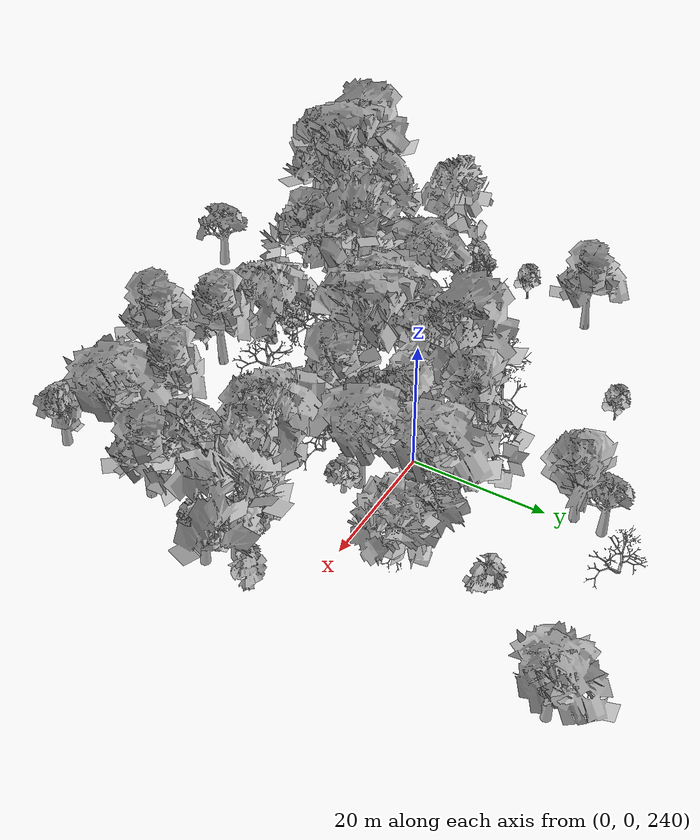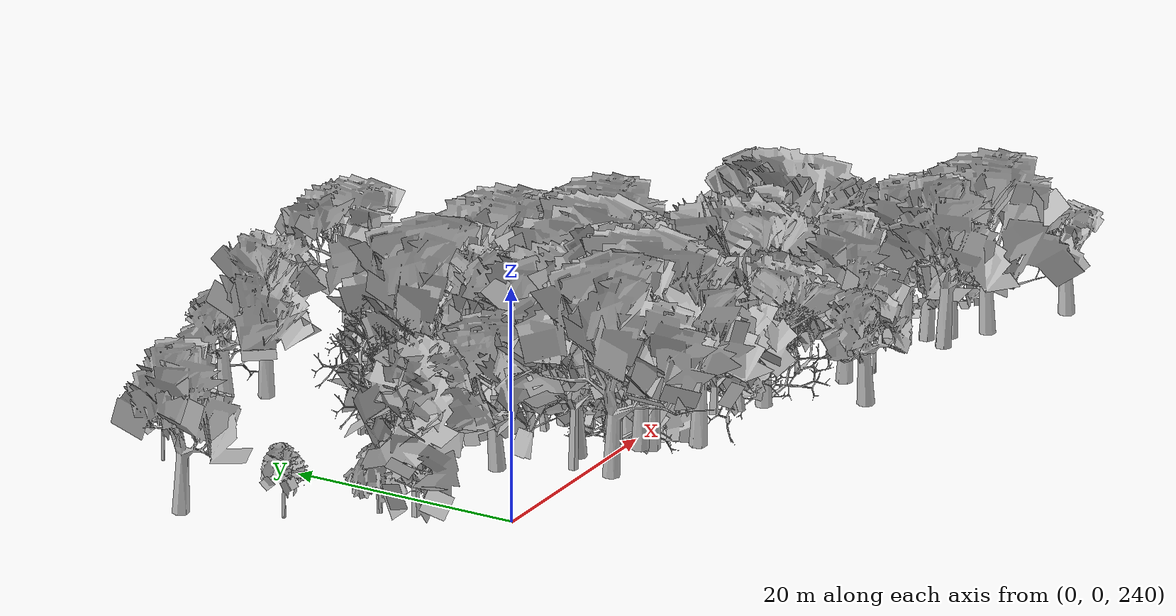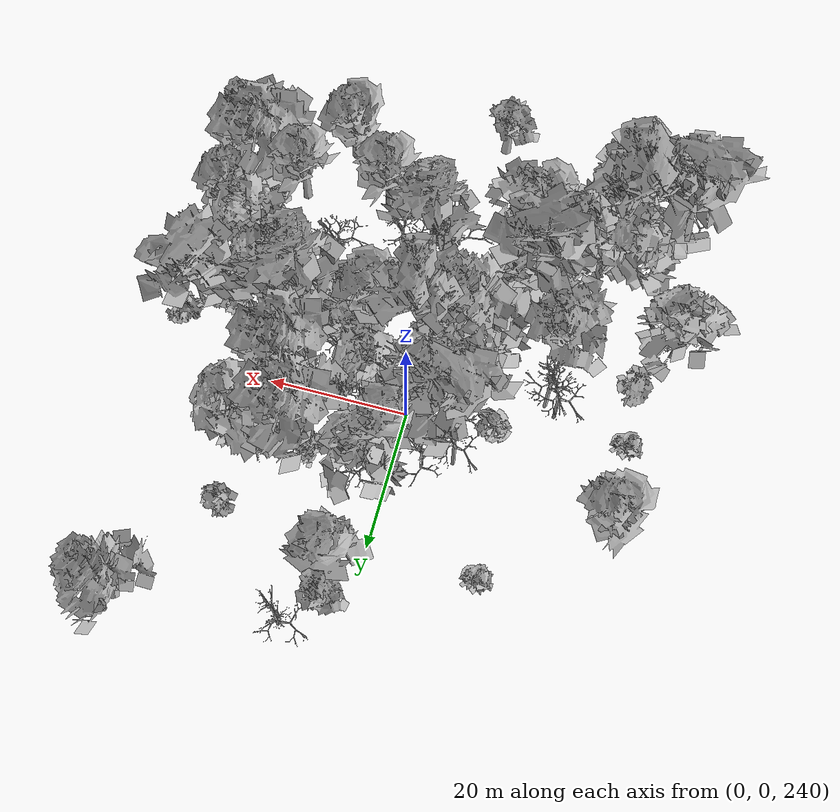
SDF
<sdf version="1.6">
 <world name="default">
  <light name="sun" type="directional">
   <pose>0 0 10 0 -0 0</pose>
   <diffuse>0.8 0.8 0.8 1</diffuse>
   <specular>0.2 0.2 0.2 1</specular>
   <attenuation>
    <range>1000</range>
    <constant>0.9</constant>
    <linear>0.01</linear>
    <quadratic>0.001</quadratic>
   </attenuation>
   <direction>-0.5 0.1 -0.9</direction>
  </light>
  <scene>
   <sky><clouds><speed>12</speed></clouds></sky>
   <ambient>0.4 0.4 0.4 1</ambient>
   <background>0.7 0.7 0.7 1</background>
   <shadows>1</shadows>
  </scene>
  <spherical_coordinates>
   <surface_model>EARTH_WGS84</surface_model>
   <latitude_deg>47.3977</latitude_deg>
   <longitude_deg>8.54559</longitude_deg>
   <elevation>0</elevation>
   <heading_deg>0</heading_deg>
  </spherical_coordinates>
  <physics name="default_physics" default="0" type="ode">
   <ode>
    <solver>
     <type>quick</type>
     <iters>100</iters>
     <sor>1.3</sor>
     <use_dynamic_moi_rescaling>0</use_dynamic_moi_rescaling>
    </solver>
    <constraints>
     <cfm>0</cfm>
     <erp>0.2</erp>
     <contact_max_correcting_vel>100</contact_max_correcting_vel>
     <contact_surface_layer>0.001</contact_surface_layer>
    </constraints>
   </ode>
   <max_step_size>0.002</max_step_size>
   <real_time_factor>1</real_time_factor>
   <real_time_update_rate>500</real_time_update_rate>
  </physics>
  <gravity>0 0 -9.8</gravity>
  <magnetic_field>6e-06 2.3e-05 -4.2e-05</magnetic_field>
  <atmosphere type="adiabatic"/>
  <model name="my_mesh0">
   <pose>-6.32831 -8.58133 252.477 0 0 -0.477507</pose>
   <static>1</static>
   <link name="body">
    <visual name="visual">
     <geometry><mesh><uri>model://trees/9.dae</uri><scale>1 1 1</scale></mesh></geometry>
    </visual>
    <collision name="collision">
     <geometry><mesh><uri>model://trees/9.dae</uri><scale>1 1 1</scale></mesh></geometry>
    </collision>
   </link>
  </model>
  <model name="my_mesh1">
   <pose>-1.57728 -21.1201 254.256 0 0 -1.08215</pose>
   <static>1</static>
   <link name="body">
    <visual name="visual">
     <geometry><mesh><uri>model://trees/19.dae</uri><scale>1 1 1</scale></mesh></geometry>
    </visual>
    <collision name="collision">
     <geometry><mesh><uri>model://trees/19.dae</uri><scale>1 1 1</scale></mesh></geometry>
    </collision>
   </link>
  </model>
  <model name="my_mesh2">
   <pose>6.13888 -3.61205 250.12 0 -0 0.696984</pose>
   <static>1</static>
   <link name="body">
    <visual name="visual">
     <geometry><mesh><uri>model://trees/1.dae</uri><scale>1 1 1</scale></mesh></geometry>
    </visual>
    <collision name="collision">
     <geometry><mesh><uri>model://trees/1.dae</uri><scale>1 1 1</scale></mesh></geometry>
    </collision>
   </link>
  </model>
  <model name="my_mesh3">
   <pose>-0.275847 2.11344 250.09 0 -0 1.06495</pose>
   <static>1</static>
   <link name="body">
    <visual name="visual">
     <geometry><mesh><uri>model://trees/2.dae</uri><scale>1 1 1</scale></mesh></geometry>
    </visual>
    <collision name="collision">
     <geometry><mesh><uri>model://trees/2.dae</uri><scale>1 1 1</scale></mesh></geometry>
    </collision>
   </link>
  </model>
  <model name="my_mesh4">
   <pose>-0.324344 -7.31548 251.705 0 0 -1.18575</pose>
   <static>1</static>
   <link name="body">
    <visual name="visual">
     <geometry><mesh><uri>model://trees/10.dae</uri><scale>1 1 1</scale></mesh></geometry>
    </visual>
    <collision name="collision">
     <geometry><mesh><uri>model://trees/10.dae</uri><scale>1 1 1</scale></mesh></geometry>
    </collision>
   </link>
  </model>
  <model name="my_mesh5">
   <pose>5.55537 -0.008784 249.718 0 -0 0.380432</pose>
   <static>1</static>
   <link name="body">
    <visual name="visual">
     <geometry><mesh><uri>model://trees/13.dae</uri><scale>1 1 1</scale></mesh></geometry>
    </visual>
    <collision name="collision">
     <geometry><mesh><uri>model://trees/13.dae</uri><scale>1 1 1</scale></mesh></geometry>
    </collision>
   </link>
  </model>
  <model name="my_mesh6">
   <pose>-7.80432 -14.2556 253.647 0 -0 0.718429</pose>
   <static>1</static>
   <link name="body">
    <visual name="visual">
     <geometry><mesh><uri>model://trees/19.dae</uri><scale>1 1 1</scale></mesh></geometry>
    </visual>
    <collision name="collision">
     <geometry><mesh><uri>model://trees/19.dae</uri><scale>1 1 1</scale></mesh></geometry>
    </collision>
   </link>
  </model>
  <model name="my_mesh7">
   <pose>0.587215 -15.3646 252.59 0 -0 1.21796</pose>
   <static>1</static>
   <link name="body">
    <visual name="visual">
     <geometry><mesh><uri>model://trees/16.dae</uri><scale>1 1 1</scale></mesh></geometry>
    </visual>
    <collision name="collision">
     <geometry><mesh><uri>model://trees/16.dae</uri><scale>1 1 1</scale></mesh></geometry>
    </collision>
   </link>
  </model>
  <model name="my_mesh8">
   <pose>-2.61893 -11.3284 252.623 0 -0 1.38453</pose>
   <static>1</static>
   <link name="body">
    <visual name="visual">
     <geometry><mesh><uri>model://trees/4.dae</uri><scale>1 1 1</scale></mesh></geometry>
    </visual>
    <collision name="collision">
     <geometry><mesh><uri>model://trees/4.dae</uri><scale>1 1 1</scale></mesh></geometry>
    </collision>
   </link>
  </model>
  <model name="my_mesh9">
   <pose>0.154091 8.51946 248.608 0 0 -1.16863</pose>
   <static>1</static>
   <link name="body">
    <visual name="visual">
     <geometry><mesh><uri>model://trees/11.dae</uri><scale>1 1 1</scale></mesh></geometry>
    </visual>
    <collision name="collision">
     <geometry><mesh><uri>model://trees/11.dae</uri><scale>1 1 1</scale></mesh></geometry>
    </collision>
   </link>
  </model>
  <model name="my_mesh10">
   <pose>-12.7811 -20.1093 256.712 0 0 -1.16319</pose>
   <static>1</static>
   <link name="body">
    <visual name="visual">
     <geometry><mesh><uri>model://trees/13.dae</uri><scale>1 1 1</scale></mesh></geometry>
    </visual>
    <collision name="collision">
     <geometry><mesh><uri>model://trees/13.dae</uri><scale>1 1 1</scale></mesh></geometry>
    </collision>
   </link>
  </model>
  <model name="my_mesh11">
   <pose>-8.42061 -7.93896 252.512 0 0 -0.668533</pose>
   <static>1</static>
   <link name="body">
    <visual name="visual">
     <geometry><mesh><uri>model://trees/12.dae</uri><scale>1 1 1</scale></mesh></geometry>
    </visual>
    <collision name="collision">
     <geometry><mesh><uri>model://trees/12.dae</uri><scale>1 1 1</scale></mesh></geometry>
    </collision>
   </link>
  </model>
  <model name="my_mesh12">
   <pose>2.51093 11.0203 247.559 0 0 -0.975487</pose>
   <static>1</static>
   <link name="body">
    <visual name="visual">
     <geometry><mesh><uri>model://trees/12.dae</uri><scale>1 1 1</scale></mesh></geometry>
    </visual>
    <collision name="collision">
     <geometry><mesh><uri>model://trees/12.dae</uri><scale>1 1 1</scale></mesh></geometry>
    </collision>
   </link>
  </model>
  <model name="my_mesh13">
   <pose>-7.06812 -9.16306 252.66 0 -0 0.472848</pose>
   <static>1</static>
   <link name="body">
    <visual name="visual">
     <geometry><mesh><uri>model://trees/4.dae</uri><scale>1 1 1</scale></mesh></geometry>
    </visual>
    <collision name="collision">
     <geometry><mesh><uri>model://trees/4.dae</uri><scale>1 1 1</scale></mesh></geometry>
    </collision>
   </link>
  </model>
  <model name="my_mesh14">
   <pose>-11.6651 -15.6457 254.564 0 0 -0.544614</pose>
   <static>1</static>
   <link name="body">
    <visual name="visual">
     <geometry><mesh><uri>model://trees/13.dae</uri><scale>1 1 1</scale></mesh></geometry>
    </visual>
    <collision name="collision">
     <geometry><mesh><uri>model://trees/13.dae</uri><scale>1 1 1</scale></mesh></geometry>
    </collision>
   </link>
  </model>
  <model name="my_mesh15">
   <pose>-5.0537 -14.5191 253.425 0 0 -1.09874</pose>
   <static>1</static>
   <link name="body">
    <visual name="visual">
     <geometry><mesh><uri>model://trees/18.dae</uri><scale>1 1 1</scale></mesh></geometry>
    </visual>
    <collision name="collision">
     <geometry><mesh><uri>model://trees/18.dae</uri><scale>1 1 1</scale></mesh></geometry>
    </collision>
   </link>
  </model>
  <model name="my_mesh16">
   <pose>-6.85318 -11.1983 252.956 0 0 -0.074618</pose>
   <static>1</static>
   <link name="body">
    <visual name="visual">
     <geometry><mesh><uri>model://trees/1.dae</uri><scale>1 1 1</scale></mesh></geometry>
    </visual>
    <collision name="collision">
     <geometry><mesh><uri>model://trees/1.dae</uri><scale>1 1 1</scale></mesh></geometry>
    </collision>
   </link>
  </model>
  <model name="my_mesh17">
   <pose>-30.86 -26.7534 260.634 0 0 -0.004821</pose>
   <static>1</static>
   <link name="body">
    <visual name="visual">
     <geometry><mesh><uri>model://trees/10.dae</uri><scale>1 1 1</scale></mesh></geometry>
    </visual>
    <collision name="collision">
     <geometry><mesh><uri>model://trees/10.dae</uri><scale>1 1 1</scale></mesh></geometry>
    </collision>
   </link>
  </model>
  <model name="my_mesh18">
   <pose>8.61712 -10.6661 250.977 0 0 -0.179722</pose>
   <static>1</static>
   <link name="body">
    <visual name="visual">
     <geometry><mesh><uri>model://trees/0.dae</uri><scale>1 1 1</scale></mesh></geometry>
    </visual>
    <collision name="collision">
     <geometry><mesh><uri>model://trees/0.dae</uri><scale>1 1 1</scale></mesh></geometry>
    </collision>
   </link>
  </model>
  <model name="my_mesh19">
   <pose>-5.9285 -3.37025 251.502 0 -0 1.52826</pose>
   <static>1</static>
   <link name="body">
    <visual name="visual">
     <geometry><mesh><uri>model://trees/14.dae</uri><scale>1 1 1</scale></mesh></geometry>
    </visual>
    <collision name="collision">
     <geometry><mesh><uri>model://trees/14.dae</uri><scale>1 1 1</scale></mesh></geometry>
    </collision>
   </link>
  </model>
  <model name="my_mesh20">
   <pose>7.38806 -1.01431 249.636 0 -0 1.32179</pose>
   <static>1</static>
   <link name="body">
    <visual name="visual">
     <geometry><mesh><uri>model://trees/17.dae</uri><scale>1 1 1</scale></mesh></geometry>
    </visual>
    <collision name="collision">
     <geometry><mesh><uri>model://trees/17.dae</uri><scale>1 1 1</scale></mesh></geometry>
    </collision>
   </link>
  </model>
  <model name="my_mesh21">
   <pose>-28.9794 -5.39808 252.518 0 -0 1.26708</pose>
   <static>1</static>
   <link name="body">
    <visual name="visual">
     <geometry><mesh><uri>model://trees/4.dae</uri><scale>1 1 1</scale></mesh></geometry>
    </visual>
    <collision name="collision">
     <geometry><mesh><uri>model://trees/4.dae</uri><scale>1 1 1</scale></mesh></geometry>
    </collision>
   </link>
  </model>
  <model name="my_mesh22">
   <pose>13.3521 -6.20302 249.824 0 -0 1.53762</pose>
   <static>1</static>
   <link name="body">
    <visual name="visual">
     <geometry><mesh><uri>model://trees/19.dae</uri><scale>1 1 1</scale></mesh></geometry>
    </visual>
    <collision name="collision">
     <geometry><mesh><uri>model://trees/19.dae</uri><scale>1 1 1</scale></mesh></geometry>
    </collision>
   </link>
  </model>
  <model name="my_mesh23">
   <pose>5.4831 -20.1514 252.856 0 -0 1.00866</pose>
   <static>1</static>
   <link name="body">
    <visual name="visual">
     <geometry><mesh><uri>model://trees/19.dae</uri><scale>1 1 1</scale></mesh></geometry>
    </visual>
    <collision name="collision">
     <geometry><mesh><uri>model://trees/19.dae</uri><scale>1 1 1</scale></mesh></geometry>
    </collision>
   </link>
  </model>
  <model name="my_mesh24">
   <pose>-29.8819 2.66146 250.763 0 -0 1.08971</pose>
   <static>1</static>
   <link name="body">
    <visual name="visual">
     <geometry><mesh><uri>model://trees/2.dae</uri><scale>1 1 1</scale></mesh></geometry>
    </visual>
    <collision name="collision">
     <geometry><mesh><uri>model://trees/2.dae</uri><scale>1 1 1</scale></mesh></geometry>
    </collision>
   </link>
  </model>
  <model name="my_mesh25">
   <pose>-6.10738 3.50783 250.075 0 0 -1.15846</pose>
   <static>1</static>
   <link name="body">
    <visual name="visual">
     <geometry><mesh><uri>model://trees/19.dae</uri><scale>1 1 1</scale></mesh></geometry>
    </visual>
    <collision name="collision">
     <geometry><mesh><uri>model://trees/19.dae</uri><scale>1 1 1</scale></mesh></geometry>
    </collision>
   </link>
  </model>
  <model name="my_mesh26">
   <pose>-20.8911 -18.1628 256.868 0 -0 1.41461</pose>
   <static>1</static>
   <link name="body">
    <visual name="visual">
     <geometry><mesh><uri>model://trees/7.dae</uri><scale>1 1 1</scale></mesh></geometry>
    </visual>
    <collision name="collision">
     <geometry><mesh><uri>model://trees/7.dae</uri><scale>1 1 1</scale></mesh></geometry>
    </collision>
   </link>
  </model>
  <model name="my_mesh27">
   <pose>-8.68455 8.69206 248.905 0 -0 0.477311</pose>
   <static>1</static>
   <link name="body">
    <visual name="visual">
     <geometry><mesh><uri>model://trees/16.dae</uri><scale>1 1 1</scale></mesh></geometry>
    </visual>
    <collision name="collision">
     <geometry><mesh><uri>model://trees/16.dae</uri><scale>1 1 1</scale></mesh></geometry>
    </collision>
   </link>
  </model>
  <model name="my_mesh28">
   <pose>-4.44021 2.16192 250.389 0 0 -1.44253</pose>
   <static>1</static>
   <link name="body">
    <visual name="visual">
     <geometry><mesh><uri>model://trees/9.dae</uri><scale>1 1 1</scale></mesh></geometry>
    </visual>
    <collision name="collision">
     <geometry><mesh><uri>model://trees/9.dae</uri><scale>1 1 1</scale></mesh></geometry>
    </collision>
   </link>
  </model>
  <model name="my_mesh29">
   <pose>11.6445 -5.81778 250.059 0 0 -1.06983</pose>
   <static>1</static>
   <link name="body">
    <visual name="visual">
     <geometry><mesh><uri>model://trees/4.dae</uri><scale>1 1 1</scale></mesh></geometry>
    </visual>
    <collision name="collision">
     <geometry><mesh><uri>model://trees/4.dae</uri><scale>1 1 1</scale></mesh></geometry>
    </collision>
   </link>
  </model>
  <model name="my_mesh30">
   <pose>-24.4938 -19.8173 257.449 0 -0 0.670876</pose>
   <static>1</static>
   <link name="body">
    <visual name="visual">
     <geometry><mesh><uri>model://trees/14.dae</uri><scale>1 1 1</scale></mesh></geometry>
    </visual>
    <collision name="collision">
     <geometry><mesh><uri>model://trees/14.dae</uri><scale>1 1 1</scale></mesh></geometry>
    </collision>
   </link>
  </model>
  <model name="my_mesh31">
   <pose>-16.1335 -19.1165 256.87 0 -0 0.366871</pose>
   <static>1</static>
   <link name="body">
    <visual name="visual">
     <geometry><mesh><uri>model://trees/19.dae</uri><scale>1 1 1</scale></mesh></geometry>
    </visual>
    <collision name="collision">
     <geometry><mesh><uri>model://trees/19.dae</uri><scale>1 1 1</scale></mesh></geometry>
    </collision>
   </link>
  </model>
  <model name="my_mesh32">
   <pose>6.79388 4.84041 248.443 0 0 -1.29503</pose>
   <static>1</static>
   <link name="body">
    <visual name="visual">
     <geometry><mesh><uri>model://trees/17.dae</uri><scale>1 1 1</scale></mesh></geometry>
    </visual>
    <collision name="collision">
     <geometry><mesh><uri>model://trees/17.dae</uri><scale>1 1 1</scale></mesh></geometry>
    </collision>
   </link>
  </model>
  <model name="my_mesh33">
   <pose>-0.614631 -21.0273 254.079 0 0 -1.03557</pose>
   <static>1</static>
   <link name="body">
    <visual name="visual">
     <geometry><mesh><uri>model://trees/0.dae</uri><scale>1 1 1</scale></mesh></geometry>
    </visual>
    <collision name="collision">
     <geometry><mesh><uri>model://trees/0.dae</uri><scale>1 1 1</scale></mesh></geometry>
    </collision>
   </link>
  </model>
  <model name="my_mesh34">
   <pose>15.4162 -30.4224 255.723 0 -0 0.546464</pose>
   <static>1</static>
   <link name="body">
    <visual name="visual">
     <geometry><mesh><uri>model://trees/11.dae</uri><scale>1 1 1</scale></mesh></geometry>
    </visual>
    <collision name="collision">
     <geometry><mesh><uri>model://trees/11.dae</uri><scale>1 1 1</scale></mesh></geometry>
    </collision>
   </link>
  </model>
  <model name="my_mesh35">
   <pose>20.9697 -23.927 252.699 0 0 -0.123696</pose>
   <static>1</static>
   <link name="body">
    <visual name="visual">
     <geometry><mesh><uri>model://trees/11.dae</uri><scale>1 1 1</scale></mesh></geometry>
    </visual>
    <collision name="collision">
     <geometry><mesh><uri>model://trees/11.dae</uri><scale>1 1 1</scale></mesh></geometry>
    </collision>
   </link>
  </model>
  <model name="my_mesh36">
   <pose>31.041 -20.7982 249.108 0 -0 0.559313</pose>
   <static>1</static>
   <link name="body">
    <visual name="visual">
     <geometry><mesh><uri>model://trees/11.dae</uri><scale>1 1 1</scale></mesh></geometry>
    </visual>
    <collision name="collision">
     <geometry><mesh><uri>model://trees/11.dae</uri><scale>1 1 1</scale></mesh></geometry>
    </collision>
   </link>
  </model>
  <model name="my_mesh37">
   <pose>29.1445 -7.6673 246.283 0 0 -0.003719</pose>
   <static>1</static>
   <link name="body">
    <visual name="visual">
     <geometry><mesh><uri>model://trees/5.dae</uri><scale>1 1 1</scale></mesh></geometry>
    </visual>
    <collision name="collision">
     <geometry><mesh><uri>model://trees/5.dae</uri><scale>1 1 1</scale></mesh></geometry>
    </collision>
   </link>
  </model>
  <model name="my_mesh38">
   <pose>-4.76391 9.99206 248.411 0 0 -0.526653</pose>
   <static>1</static>
   <link name="body">
    <visual name="visual">
     <geometry><mesh><uri>model://trees/17.dae</uri><scale>1 1 1</scale></mesh></geometry>
    </visual>
    <collision name="collision">
     <geometry><mesh><uri>model://trees/17.dae</uri><scale>1 1 1</scale></mesh></geometry>
    </collision>
   </link>
  </model>
  <model name="my_mesh39">
   <pose>15.8292 0.58574 248.7 0 -0 0.357558</pose>
   <static>1</static>
   <link name="body">
    <visual name="visual">
     <geometry><mesh><uri>model://trees/9.dae</uri><scale>1 1 1</scale></mesh></geometry>
    </visual>
    <collision name="collision">
     <geometry><mesh><uri>model://trees/9.dae</uri><scale>1 1 1</scale></mesh></geometry>
    </collision>
   </link>
  </model>
  <model name="my_mesh40">
   <pose>-3.97577 -2.45363 251.21 0 0 -0.829066</pose>
   <static>1</static>
   <link name="body">
    <visual name="visual">
     <geometry><mesh><uri>model://trees/16.dae</uri><scale>1 1 1</scale></mesh></geometry>
    </visual>
    <collision name="collision">
     <geometry><mesh><uri>model://trees/16.dae</uri><scale>1 1 1</scale></mesh></geometry>
    </collision>
   </link>
  </model>
  <model name="my_mesh41">
   <pose>12.7714 8.4382 247.289 0 -0 0.127458</pose>
   <static>1</static>
   <link name="body">
    <visual name="visual">
     <geometry><mesh><uri>model://trees/9.dae</uri><scale>1 1 1</scale></mesh></geometry>
    </visual>
    <collision name="collision">
     <geometry><mesh><uri>model://trees/9.dae</uri><scale>1 1 1</scale></mesh></geometry>
    </collision>
   </link>
  </model>
  <model name="my_mesh42">
   <pose>30.2467 33.6382 240.27 0 0 -0.142558</pose>
   <static>1</static>
   <link name="body">
    <visual name="visual">
     <geometry><mesh><uri>model://trees/8.dae</uri><scale>1 1 1</scale></mesh></geometry>
    </visual>
    <collision name="collision">
     <geometry><mesh><uri>model://trees/8.dae</uri><scale>1 1 1</scale></mesh></geometry>
    </collision>
   </link>
  </model>
  <model name="my_mesh43">
   <pose>31.7433 -7.57685 245.466 0 -0 1.47779</pose>
   <static>1</static>
   <link name="body">
    <visual name="visual">
     <geometry><mesh><uri>model://trees/10.dae</uri><scale>1 1 1</scale></mesh></geometry>
    </visual>
    <collision name="collision">
     <geometry><mesh><uri>model://trees/10.dae</uri><scale>1 1 1</scale></mesh></geometry>
    </collision>
   </link>
  </model>
  <model name="my_mesh44">
   <pose>31.7985 -13.5882 246.578 0 0 -0.512371</pose>
   <static>1</static>
   <link name="body">
    <visual name="visual">
     <geometry><mesh><uri>model://trees/0.dae</uri><scale>1 1 1</scale></mesh></geometry>
    </visual>
    <collision name="collision">
     <geometry><mesh><uri>model://trees/0.dae</uri><scale>1 1 1</scale></mesh></geometry>
    </collision>
   </link>
  </model>
  <model name="my_mesh45">
   <pose>-9.75781 -12.6424 253.561 0 -0 1.47139</pose>
   <static>1</static>
   <link name="body">
    <visual name="visual">
     <geometry><mesh><uri>model://trees/0.dae</uri><scale>1 1 1</scale></mesh></geometry>
    </visual>
    <collision name="collision">
     <geometry><mesh><uri>model://trees/0.dae</uri><scale>1 1 1</scale></mesh></geometry>
    </collision>
   </link>
  </model>
  <model name="my_mesh46">
   <pose>0.074296 -19.5133 253.605 0 0 -0.890975</pose>
   <static>1</static>
   <link name="body">
    <visual name="visual">
     <geometry><mesh><uri>model://trees/3.dae</uri><scale>1 1 1</scale></mesh></geometry>
    </visual>
    <collision name="collision">
     <geometry><mesh><uri>model://trees/3.dae</uri><scale>1 1 1</scale></mesh></geometry>
    </collision>
   </link>
  </model>
  <model name="my_mesh47">
   <pose>-18.5486 -20.2403 257.421 0 0 -0.862618</pose>
   <static>1</static>
   <link name="body">
    <visual name="visual">
     <geometry><mesh><uri>model://trees/14.dae</uri><scale>1 1 1</scale></mesh></geometry>
    </visual>
    <collision name="collision">
     <geometry><mesh><uri>model://trees/14.dae</uri><scale>1 1 1</scale></mesh></geometry>
    </collision>
   </link>
  </model>
  <model name="my_mesh48">
   <pose>11.4325 -4.08729 249.863 0 -0 1.37711</pose>
   <static>1</static>
   <link name="body">
    <visual name="visual">
     <geometry><mesh><uri>model://trees/7.dae</uri><scale>1 1 1</scale></mesh></geometry>
    </visual>
    <collision name="collision">
     <geometry><mesh><uri>model://trees/7.dae</uri><scale>1 1 1</scale></mesh></geometry>
    </collision>
   </link>
  </model>
  <model name="my_mesh49">
   <pose>32.2493 -32.8227 253.277 0 0 -0.428095</pose>
   <static>1</static>
   <link name="body">
    <visual name="visual">
     <geometry><mesh><uri>model://trees/7.dae</uri><scale>1 1 1</scale></mesh></geometry>
    </visual>
    <collision name="collision">
     <geometry><mesh><uri>model://trees/7.dae</uri><scale>1 1 1</scale></mesh></geometry>
    </collision>
   </link>
  </model>
  <model name="my_mesh50">
   <pose>-5.01751 -34.411 258.855 0 -0 1.28858</pose>
   <static>1</static>
   <link name="body">
    <visual name="visual">
     <geometry><mesh><uri>model://trees/7.dae</uri><scale>1 1 1</scale></mesh></geometry>
    </visual>
    <collision name="collision">
     <geometry><mesh><uri>model://trees/7.dae</uri><scale>1 1 1</scale></mesh></geometry>
    </collision>
   </link>
  </model>
  <model name="my_mesh51">
   <pose>-32.8383 -10.9418 254.784 0 0 -0.889272</pose>
   <static>1</static>
   <link name="body">
    <visual name="visual">
     <geometry><mesh><uri>model://trees/15.dae</uri><scale>1 1 1</scale></mesh></geometry>
    </visual>
    <collision name="collision">
     <geometry><mesh><uri>model://trees/15.dae</uri><scale>1 1 1</scale></mesh></geometry>
    </collision>
   </link>
  </model>
  <model name="my_mesh52">
   <pose>26.5136 -6.6136 246.576 0 -0 0.288386</pose>
   <static>1</static>
   <link name="body">
    <visual name="visual">
     <geometry><mesh><uri>model://trees/0.dae</uri><scale>1 1 1</scale></mesh></geometry>
    </visual>
    <collision name="collision">
     <geometry><mesh><uri>model://trees/0.dae</uri><scale>1 1 1</scale></mesh></geometry>
    </collision>
   </link>
  </model>
  <model name="my_mesh53">
   <pose>-10.9173 -24.3552 258.113 0 -0 1.03942</pose>
   <static>1</static>
   <link name="body">
    <visual name="visual">
     <geometry><mesh><uri>model://trees/13.dae</uri><scale>1 1 1</scale></mesh></geometry>
    </visual>
    <collision name="collision">
     <geometry><mesh><uri>model://trees/13.dae</uri><scale>1 1 1</scale></mesh></geometry>
    </collision>
   </link>
  </model>
  <model name="my_mesh54">
   <pose>-12.6326 4.08259 250.354 0 -0 0.357674</pose>
   <static>1</static>
   <link name="body">
    <visual name="visual">
     <geometry><mesh><uri>model://trees/1.dae</uri><scale>1 1 1</scale></mesh></geometry>
    </visual>
    <collision name="collision">
     <geometry><mesh><uri>model://trees/1.dae</uri><scale>1 1 1</scale></mesh></geometry>
    </collision>
   </link>
  </model>
  <model name="my_mesh55">
   <pose>2.28207 -11.4502 251.937 0 -0 1.505</pose>
   <static>1</static>
   <link name="body">
    <visual name="visual">
     <geometry><mesh><uri>model://trees/6.dae</uri><scale>1 1 1</scale></mesh></geometry>
    </visual>
    <collision name="collision">
     <geometry><mesh><uri>model://trees/6.dae</uri><scale>1 1 1</scale></mesh></geometry>
    </collision>
   </link>
  </model>
  <model name="my_mesh56">
   <pose>7.6846 -7.97371 250.63 0 0 -0.579008</pose>
   <static>1</static>
   <link name="body">
    <visual name="visual">
     <geometry><mesh><uri>model://trees/5.dae</uri><scale>1 1 1</scale></mesh></geometry>
    </visual>
    <collision name="collision">
     <geometry><mesh><uri>model://trees/5.dae</uri><scale>1 1 1</scale></mesh></geometry>
    </collision>
   </link>
  </model>
  <model name="my_mesh57">
   <pose>-22.7053 -29.5894 260.737 0 -0 0.953398</pose>
   <static>1</static>
   <link name="body">
    <visual name="visual">
     <geometry><mesh><uri>model://trees/11.dae</uri><scale>1 1 1</scale></mesh></geometry>
    </visual>
    <collision name="collision">
     <geometry><mesh><uri>model://trees/11.dae</uri><scale>1 1 1</scale></mesh></geometry>
    </collision>
   </link>
  </model>
  <model name="my_mesh58">
   <pose>9.12251 -24.9697 253.873 0 0 -0.18171</pose>
   <static>1</static>
   <link name="body">
    <visual name="visual">
     <geometry><mesh><uri>model://trees/11.dae</uri><scale>1 1 1</scale></mesh></geometry>
    </visual>
    <collision name="collision">
     <geometry><mesh><uri>model://trees/11.dae</uri><scale>1 1 1</scale></mesh></geometry>
    </collision>
   </link>
  </model>
  <model name="my_mesh59">
   <pose>18.0745 -9.91903 248.607 0 0 -0.992252</pose>
   <static>1</static>
   <link name="body">
    <visual name="visual">
     <geometry><mesh><uri>model://trees/9.dae</uri><scale>1 1 1</scale></mesh></geometry>
    </visual>
    <collision name="collision">
     <geometry><mesh><uri>model://trees/9.dae</uri><scale>1 1 1</scale></mesh></geometry>
    </collision>
   </link>
  </model>
  <model name="my_mesh60">
   <pose>7.15468 -6.46211 250.538 0 0 -1.13155</pose>
   <static>1</static>
   <link name="body">
    <visual name="visual">
     <geometry><mesh><uri>model://trees/16.dae</uri><scale>1 1 1</scale></mesh></geometry>
    </visual>
    <collision name="collision">
     <geometry><mesh><uri>model://trees/16.dae</uri><scale>1 1 1</scale></mesh></geometry>
    </collision>
   </link>
  </model>
  <model name="my_mesh61">
   <pose>-13.9803 -17.2074 255.467 0 -0 0.614212</pose>
   <static>1</static>
   <link name="body">
    <visual name="visual">
     <geometry><mesh><uri>model://trees/10.dae</uri><scale>1 1 1</scale></mesh></geometry>
    </visual>
    <collision name="collision">
     <geometry><mesh><uri>model://trees/10.dae</uri><scale>1 1 1</scale></mesh></geometry>
    </collision>
   </link>
  </model>
  <model name="my_mesh62">
   <pose>-19.9282 -0.07762 251.319 0 -0 0.561921</pose>
   <static>1</static>
   <link name="body">
    <visual name="visual">
     <geometry><mesh><uri>model://trees/16.dae</uri><scale>1 1 1</scale></mesh></geometry>
    </visual>
    <collision name="collision">
     <geometry><mesh><uri>model://trees/16.dae</uri><scale>1 1 1</scale></mesh></geometry>
    </collision>
   </link>
  </model>
  <model name="my_mesh63">
   <pose>28.062 -27.8564 252.077 0 -0 0.304427</pose>
   <static>1</static>
   <link name="body">
    <visual name="visual">
     <geometry><mesh><uri>model://trees/9.dae</uri><scale>1 1 1</scale></mesh></geometry>
    </visual>
    <collision name="collision">
     <geometry><mesh><uri>model://trees/9.dae</uri><scale>1 1 1</scale></mesh></geometry>
    </collision>
   </link>
  </model>
  <model name="my_mesh64">
   <pose>-32.2694 -11.6247 254.883 0 0 -0.927683</pose>
   <static>1</static>
   <link name="body">
    <visual name="visual">
     <geometry><mesh><uri>model://trees/6.dae</uri><scale>1 1 1</scale></mesh></geometry>
    </visual>
    <collision name="collision">
     <geometry><mesh><uri>model://trees/6.dae</uri><scale>1 1 1</scale></mesh></geometry>
    </collision>
   </link>
  </model>
  <model name="my_mesh65">
   <pose>-21.5052 -24.9273 259.099 0 -0 1.23729</pose>
   <static>1</static>
   <link name="body">
    <visual name="visual">
     <geometry><mesh><uri>model://trees/11.dae</uri><scale>1 1 1</scale></mesh></geometry>
    </visual>
    <collision name="collision">
     <geometry><mesh><uri>model://trees/11.dae</uri><scale>1 1 1</scale></mesh></geometry>
    </collision>
   </link>
  </model>
  <model name="my_mesh66">
   <pose>-18.475 -1.18741 251.508 0 -0 0.207112</pose>
   <static>1</static>
   <link name="body">
    <visual name="visual">
     <geometry><mesh><uri>model://trees/16.dae</uri><scale>1 1 1</scale></mesh></geometry>
    </visual>
    <collision name="collision">
     <geometry><mesh><uri>model://trees/16.dae</uri><scale>1 1 1</scale></mesh></geometry>
    </collision>
   </link>
  </model>
  <model name="my_mesh67">
   <pose>27.5227 -25.3095 251.664 0 -0 0.767396</pose>
   <static>1</static>
   <link name="body">
    <visual name="visual">
     <geometry><mesh><uri>model://trees/6.dae</uri><scale>1 1 1</scale></mesh></geometry>
    </visual>
    <collision name="collision">
     <geometry><mesh><uri>model://trees/6.dae</uri><scale>1 1 1</scale></mesh></geometry>
    </collision>
   </link>
  </model>
  <model name="my_mesh68">
   <pose>7.63134 -8.4369 250.724 0 -0 0.790686</pose>
   <static>1</static>
   <link name="body">
    <visual name="visual">
     <geometry><mesh><uri>model://trees/11.dae</uri><scale>1 1 1</scale></mesh></geometry>
    </visual>
    <collision name="collision">
     <geometry><mesh><uri>model://trees/11.dae</uri><scale>1 1 1</scale></mesh></geometry>
    </collision>
   </link>
  </model>
  <model name="my_mesh69">
   <pose>27.445 -17.0509 248.665 0 -0 1.29731</pose>
   <static>1</static>
   <link name="body">
    <visual name="visual">
     <geometry><mesh><uri>model://trees/15.dae</uri><scale>1 1 1</scale></mesh></geometry>
    </visual>
    <collision name="collision">
     <geometry><mesh><uri>model://trees/15.dae</uri><scale>1 1 1</scale></mesh></geometry>
    </collision>
   </link>
  </model>
  <model name="my_mesh70">
   <pose>21.3052 8.21993 246.187 0 -0 0.54981</pose>
   <static>1</static>
   <link name="body">
    <visual name="visual">
     <geometry><mesh><uri>model://trees/12.dae</uri><scale>1 1 1</scale></mesh></geometry>
    </visual>
    <collision name="collision">
     <geometry><mesh><uri>model://trees/12.dae</uri><scale>1 1 1</scale></mesh></geometry>
    </collision>
   </link>
  </model>
  <model name="my_mesh71">
   <pose>22.6454 6.98481 245.98 0 0 -0.710027</pose>
   <static>1</static>
   <link name="body">
    <visual name="visual">
     <geometry><mesh><uri>model://trees/18.dae</uri><scale>1 1 1</scale></mesh></geometry>
    </visual>
    <collision name="collision">
     <geometry><mesh><uri>model://trees/18.dae</uri><scale>1 1 1</scale></mesh></geometry>
    </collision>
   </link>
  </model>
  <model name="my_mesh72">
   <pose>9.23921 -27.5673 255.059 0 -0 1.35422</pose>
   <static>1</static>
   <link name="body">
    <visual name="visual">
     <geometry><mesh><uri>model://trees/2.dae</uri><scale>1 1 1</scale></mesh></geometry>
    </visual>
    <collision name="collision">
     <geometry><mesh><uri>model://trees/2.dae</uri><scale>1 1 1</scale></mesh></geometry>
    </collision>
   </link>
  </model>
  <model name="my_mesh73">
   <pose>28.9974 -9.23123 246.392 0 -0 0.155567</pose>
   <static>1</static>
   <link name="body">
    <visual name="visual">
     <geometry><mesh><uri>model://trees/0.dae</uri><scale>1 1 1</scale></mesh></geometry>
    </visual>
    <collision name="collision">
     <geometry><mesh><uri>model://trees/0.dae</uri><scale>1 1 1</scale></mesh></geometry>
    </collision>
   </link>
  </model>
  <model name="my_mesh74">
   <pose>19.7537 20.6109 243.773 0 0 -0.992662</pose>
   <static>1</static>
   <link name="body">
    <visual name="visual">
     <geometry><mesh><uri>model://trees/4.dae</uri><scale>1 1 1</scale></mesh></geometry>
    </visual>
    <collision name="collision">
     <geometry><mesh><uri>model://trees/4.dae</uri><scale>1 1 1</scale></mesh></geometry>
    </collision>
   </link>
  </model>
  <model name="my_mesh75">
   <pose>15.2416 -10.2213 249.264 0 -0 0.624245</pose>
   <static>1</static>
   <link name="body">
    <visual name="visual">
     <geometry><mesh><uri>model://trees/2.dae</uri><scale>1 1 1</scale></mesh></geometry>
    </visual>
    <collision name="collision">
     <geometry><mesh><uri>model://trees/2.dae</uri><scale>1 1 1</scale></mesh></geometry>
    </collision>
   </link>
  </model>
  <model name="my_mesh76">
   <pose>7.71442 33.2169 243.104 0 -0 0.914603</pose>
   <static>1</static>
   <link name="body">
    <visual name="visual">
     <geometry><mesh><uri>model://trees/18.dae</uri><scale>1 1 1</scale></mesh></geometry>
    </visual>
    <collision name="collision">
     <geometry><mesh><uri>model://trees/18.dae</uri><scale>1 1 1</scale></mesh></geometry>
    </collision>
   </link>
  </model>
  <model name="my_mesh77">
   <pose>-12.6747 -17.8897 255.659 0 0 -0.52205</pose>
   <static>1</static>
   <link name="body">
    <visual name="visual">
     <geometry><mesh><uri>model://trees/7.dae</uri><scale>1 1 1</scale></mesh></geometry>
    </visual>
    <collision name="collision">
     <geometry><mesh><uri>model://trees/7.dae</uri><scale>1 1 1</scale></mesh></geometry>
    </collision>
   </link>
  </model>
  <model name="my_mesh78">
   <pose>-18.7837 -9.74528 253.329 0 -0 0.593197</pose>
   <static>1</static>
   <link name="body">
    <visual name="visual">
     <geometry><mesh><uri>model://trees/8.dae</uri><scale>1 1 1</scale></mesh></geometry>
    </visual>
    <collision name="collision">
     <geometry><mesh><uri>model://trees/8.dae</uri><scale>1 1 1</scale></mesh></geometry>
    </collision>
   </link>
  </model>
  <model name="my_mesh79">
   <pose>18.3147 11.0809 246.17 0 -0 1.4025</pose>
   <static>1</static>
   <link name="body">
    <visual name="visual">
     <geometry><mesh><uri>model://trees/13.dae</uri><scale>1 1 1</scale></mesh></geometry>
    </visual>
    <collision name="collision">
     <geometry><mesh><uri>model://trees/13.dae</uri><scale>1 1 1</scale></mesh></geometry>
    </collision>
   </link>
  </model>
  <model name="my_mesh80">
   <pose>33.4621 -4.55524 244.313 0 -0 0.330764</pose>
   <static>1</static>
   <link name="body">
    <visual name="visual">
     <geometry><mesh><uri>model://trees/4.dae</uri><scale>1 1 1</scale></mesh></geometry>
    </visual>
    <collision name="collision">
     <geometry><mesh><uri>model://trees/4.dae</uri><scale>1 1 1</scale></mesh></geometry>
    </collision>
   </link>
  </model>
  <model name="my_mesh81">
   <pose>3.47791 25.1652 244.54 0 0 -1.18764</pose>
   <static>1</static>
   <link name="body">
    <visual name="visual">
     <geometry><mesh><uri>model://trees/11.dae</uri><scale>1 1 1</scale></mesh></geometry>
    </visual>
    <collision name="collision">
     <geometry><mesh><uri>model://trees/11.dae</uri><scale>1 1 1</scale></mesh></geometry>
    </collision>
   </link>
  </model>
  <model name="my_mesh82">
   <pose>14.2077 -17.9501 251.374 0 -0 1.45311</pose>
   <static>1</static>
   <link name="body">
    <visual name="visual">
     <geometry><mesh><uri>model://trees/19.dae</uri><scale>1 1 1</scale></mesh></geometry>
    </visual>
    <collision name="collision">
     <geometry><mesh><uri>model://trees/19.dae</uri><scale>1 1 1</scale></mesh></geometry>
    </collision>
   </link>
  </model>
  <model name="my_mesh83">
   <pose>-29.7104 12.1483 249.129 0 -0 0.145936</pose>
   <static>1</static>
   <link name="body">
    <visual name="visual">
     <geometry><mesh><uri>model://trees/11.dae</uri><scale>1 1 1</scale></mesh></geometry>
    </visual>
    <collision name="collision">
     <geometry><mesh><uri>model://trees/11.dae</uri><scale>1 1 1</scale></mesh></geometry>
    </collision>
   </link>
  </model>
  <model name="my_mesh84">
   <pose>1.7635 -21.8055 253.805 0 0 -1.32925</pose>
   <static>1</static>
   <link name="body">
    <visual name="visual">
     <geometry><mesh><uri>model://trees/8.dae</uri><scale>1 1 1</scale></mesh></geometry>
    </visual>
    <collision name="collision">
     <geometry><mesh><uri>model://trees/8.dae</uri><scale>1 1 1</scale></mesh></geometry>
    </collision>
   </link>
  </model>
  <model name="my_mesh85">
   <pose>1.27963 12.458 247.278 0 0 -1.53931</pose>
   <static>1</static>
   <link name="body">
    <visual name="visual">
     <geometry><mesh><uri>model://trees/17.dae</uri><scale>1 1 1</scale></mesh></geometry>
    </visual>
    <collision name="collision">
     <geometry><mesh><uri>model://trees/17.dae</uri><scale>1 1 1</scale></mesh></geometry>
    </collision>
   </link>
  </model>
  <model name="my_mesh86">
   <pose>34.3001 -10.4372 245.538 0 0 -0.275144</pose>
   <static>1</static>
   <link name="body">
    <visual name="visual">
     <geometry><mesh><uri>model://trees/7.dae</uri><scale>1 1 1</scale></mesh></geometry>
    </visual>
    <collision name="collision">
     <geometry><mesh><uri>model://trees/7.dae</uri><scale>1 1 1</scale></mesh></geometry>
    </collision>
   </link>
  </model>
  <model name="my_mesh87">
   <pose>21.8591 -10.7132 248.687 0 -0 0.115571</pose>
   <static>1</static>
   <link name="body">
    <visual name="visual">
     <geometry><mesh><uri>model://trees/15.dae</uri><scale>1 1 1</scale></mesh></geometry>
    </visual>
    <collision name="collision">
     <geometry><mesh><uri>model://trees/15.dae</uri><scale>1 1 1</scale></mesh></geometry>
    </collision>
   </link>
  </model>
  <model name="my_mesh88">
   <pose>24.362 -26.3761 252.7 0 0 -1.47963</pose>
   <static>1</static>
   <link name="body">
    <visual name="visual">
     <geometry><mesh><uri>model://trees/7.dae</uri><scale>1 1 1</scale></mesh></geometry>
    </visual>
    <collision name="collision">
     <geometry><mesh><uri>model://trees/7.dae</uri><scale>1 1 1</scale></mesh></geometry>
    </collision>
   </link>
  </model>
  <model name="my_mesh89">
   <pose>3.28402 28.9454 243.782 0 -0 1.11791</pose>
   <static>1</static>
   <link name="body">
    <visual name="visual">
     <geometry><mesh><uri>model://trees/7.dae</uri><scale>1 1 1</scale></mesh></geometry>
    </visual>
    <collision name="collision">
     <geometry><mesh><uri>model://trees/7.dae</uri><scale>1 1 1</scale></mesh></geometry>
    </collision>
   </link>
  </model>
  <model name="my_mesh90">
   <pose>23.6957 -18.2659 250.266 0 -0 0.269764</pose>
   <static>1</static>
   <link name="body">
    <visual name="visual">
     <geometry><mesh><uri>model://trees/3.dae</uri><scale>1 1 1</scale></mesh></geometry>
    </visual>
    <collision name="collision">
     <geometry><mesh><uri>model://trees/3.dae</uri><scale>1 1 1</scale></mesh></geometry>
    </collision>
   </link>
  </model>
  <model name="my_mesh91">
   <pose>17.5612 -0.796027 248.372 0 0 -0.399201</pose>
   <static>1</static>
   <link name="body">
    <visual name="visual">
     <geometry><mesh><uri>model://trees/0.dae</uri><scale>1 1 1</scale></mesh></geometry>
    </visual>
    <collision name="collision">
     <geometry><mesh><uri>model://trees/0.dae</uri><scale>1 1 1</scale></mesh></geometry>
    </collision>
   </link>
  </model>
  <model name="my_mesh92">
   <pose>-24.8895 -25.8534 260.502 0 0 -0.921352</pose>
   <static>1</static>
   <link name="body">
    <visual name="visual">
     <geometry><mesh><uri>model://trees/10.dae</uri><scale>1 1 1</scale></mesh></geometry>
    </visual>
    <collision name="collision">
     <geometry><mesh><uri>model://trees/10.dae</uri><scale>1 1 1</scale></mesh></geometry>
    </collision>
   </link>
  </model>
  <model name="my_mesh93">
   <pose>-7.32798 3.44505 250.166 0 0 -0.21377</pose>
   <static>1</static>
   <link name="body">
    <visual name="visual">
     <geometry><mesh><uri>model://trees/10.dae</uri><scale>1 1 1</scale></mesh></geometry>
    </visual>
    <collision name="collision">
     <geometry><mesh><uri>model://trees/10.dae</uri><scale>1 1 1</scale></mesh></geometry>
    </collision>
   </link>
  </model>
  <model name="my_mesh94">
   <pose>4.48833 -1.85963 250.292 0 -0 1.38664</pose>
   <static>1</static>
   <link name="body">
    <visual name="visual">
     <geometry><mesh><uri>model://trees/3.dae</uri><scale>1 1 1</scale></mesh></geometry>
    </visual>
    <collision name="collision">
     <geometry><mesh><uri>model://trees/3.dae</uri><scale>1 1 1</scale></mesh></geometry>
    </collision>
   </link>
  </model>
  <model name="my_mesh95">
   <pose>-15.6024 22.867 246.246 0 -0 1.18155</pose>
   <static>1</static>
   <link name="body">
    <visual name="visual">
     <geometry><mesh><uri>model://trees/2.dae</uri><scale>1 1 1</scale></mesh></geometry>
    </visual>
    <collision name="collision">
     <geometry><mesh><uri>model://trees/2.dae</uri><scale>1 1 1</scale></mesh></geometry>
    </collision>
   </link>
  </model>
  <model name="my_mesh96">
   <pose>25.0034 -21.0755 250.899 0 0 -1.01515</pose>
   <static>1</static>
   <link name="body">
    <visual name="visual">
     <geometry><mesh><uri>model://trees/2.dae</uri><scale>1 1 1</scale></mesh></geometry>
    </visual>
    <collision name="collision">
     <geometry><mesh><uri>model://trees/2.dae</uri><scale>1 1 1</scale></mesh></geometry>
    </collision>
   </link>
  </model>
  <model name="my_mesh97">
   <pose>9.69413 11.7285 246.715 0 -0 0.127765</pose>
   <static>1</static>
   <link name="body">
    <visual name="visual">
     <geometry><mesh><uri>model://trees/6.dae</uri><scale>1 1 1</scale></mesh></geometry>
    </visual>
    <collision name="collision">
     <geometry><mesh><uri>model://trees/6.dae</uri><scale>1 1 1</scale></mesh></geometry>
    </collision>
   </link>
  </model>
  <model name="my_mesh98">
   <pose>10.9373 -4.5608 249.878 0 -0 0.292566</pose>
   <static>1</static>
   <link name="body">
    <visual name="visual">
     <geometry><mesh><uri>model://trees/1.dae</uri><scale>1 1 1</scale></mesh></geometry>
    </visual>
    <collision name="collision">
     <geometry><mesh><uri>model://trees/1.dae</uri><scale>1 1 1</scale></mesh></geometry>
    </collision>
   </link>
  </model>
 </world>
</sdf>
